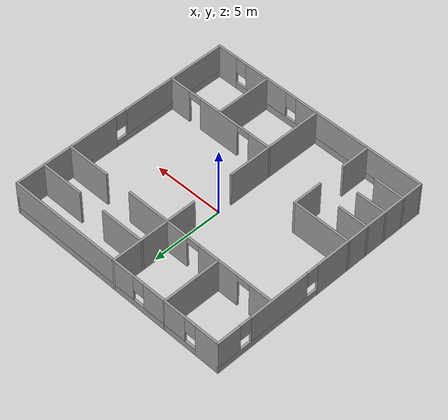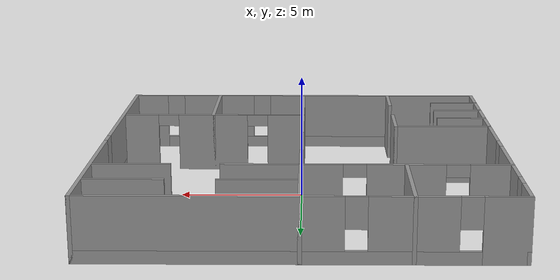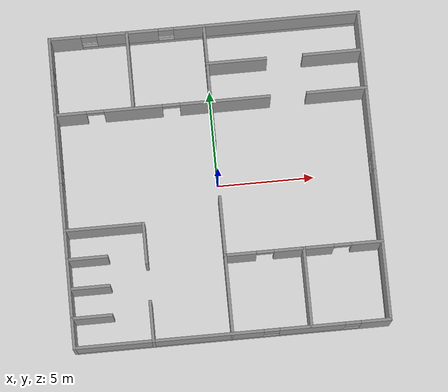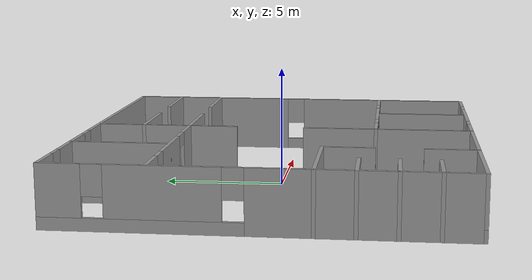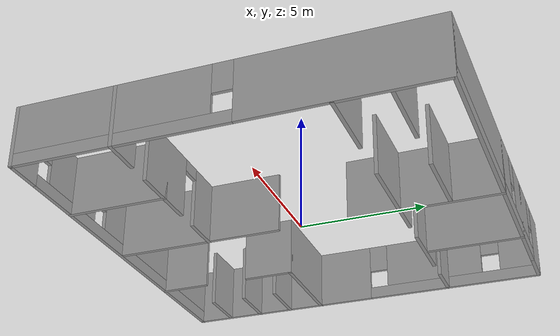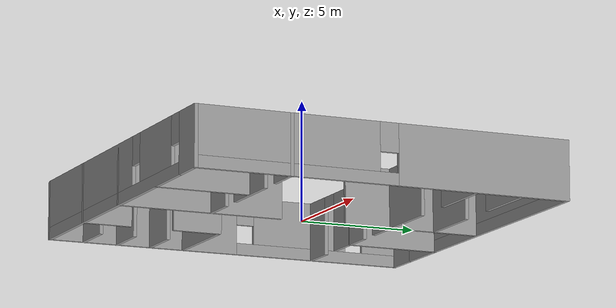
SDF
<?xml version='1.0'?>
<sdf version='1.6'>
  <model name='warehouse'>
    <pose frame=''>0 0 0 0 -0 0</pose>
    <link name='Wall_0'>
      <pose frame=''>0 8 0 0 -0 0</pose>
      <visual name='Wall_0_Visual_0'>
        <pose frame=''>-7.22039 0 1.25 0 -0 0</pose>
        <geometry>
          <box>
            <size>1.70922 0.15 2.5</size>
          </box>
        </geometry>
        <material>
          <script>
            <uri>file://media/materials/scripts/gazebo.material</uri>
            <name>Gazebo/Grey</name>
          </script>
          <ambient>0.368627 0.368627 0.368627 1</ambient>
        </material>
      </visual>
      <collision name='Wall_0_Collision_0'>
        <geometry>
          <box>
            <size>1.70922 0.15 2.5</size>
          </box>
        </geometry>
        <pose frame=''>-7.22039 0 1.25 0 -0 0</pose>
      </collision>
      <visual name='Wall_0_Visual_1'>
        <pose frame=''>0.854609 0 0.25 0 -0 0</pose>
        <geometry>
          <box>
            <size>14.4408 0.15 0.5</size>
          </box>
        </geometry>
        <material>
          <script>
            <uri>file://media/materials/scripts/gazebo.material</uri>
            <name>Gazebo/Grey</name>
          </script>
          <ambient>0.368627 0.368627 0.368627 1</ambient>
        </material>
      </visual>
      <collision name='Wall_0_Collision_1'>
        <geometry>
          <box>
            <size>14.4408 0.15 0.5</size>
          </box>
        </geometry>
        <pose frame=''>0.854609 0 0.25 0 -0 0</pose>
      </collision>
      <visual name='Wall_0_Visual_2'>
        <pose frame=''>-3.96881 0 1.5 0 -0 0</pose>
        <geometry>
          <box>
            <size>3.19395 0.15 2</size>
          </box>
        </geometry>
        <material>
          <script>
            <uri>file://media/materials/scripts/gazebo.material</uri>
            <name>Gazebo/Grey</name>
          </script>
          <ambient>0.368627 0.368627 0.368627 1</ambient>
        </material>
      </visual>
      <collision name='Wall_0_Collision_2'>
        <geometry>
          <box>
            <size>3.19395 0.15 2</size>
          </box>
        </geometry>
        <pose frame=''>-3.96881 0 1.5 0 -0 0</pose>
      </collision>
      <visual name='Wall_0_Visual_3'>
        <pose frame=''>3.25158 0 1.5 0 -0 0</pose>
        <geometry>
          <box>
            <size>9.64683 0.15 2</size>
          </box>
        </geometry>
        <material>
          <script>
            <uri>file://media/materials/scripts/gazebo.material</uri>
            <name>Gazebo/Grey</name>
          </script>
          <ambient>0.368627 0.368627 0.368627 1</ambient>
        </material>
      </visual>
      <collision name='Wall_0_Collision_3'>
        <geometry>
          <box>
            <size>9.64683 0.15 2</size>
          </box>
        </geometry>
        <pose frame=''>3.25158 0 1.5 0 -0 0</pose>
      </collision>
      <visual name='Wall_0_Visual_4'>
        <pose frame=''>-5.96578 0 1.9 0 -0 0</pose>
        <geometry>
          <box>
            <size>0.8 0.15 1.2</size>
          </box>
        </geometry>
        <material>
          <script>
            <uri>file://media/materials/scripts/gazebo.material</uri>
            <name>Gazebo/Grey</name>
          </script>
          <ambient>0.368627 0.368627 0.368627 1</ambient>
        </material>
      </visual>
      <collision name='Wall_0_Collision_4'>
        <geometry>
          <box>
            <size>0.8 0.15 1.2</size>
          </box>
        </geometry>
        <pose frame=''>-5.96578 0 1.9 0 -0 0</pose>
      </collision>
      <visual name='Wall_0_Visual_5'>
        <pose frame=''>-1.97183 0 1.9 0 -0 0</pose>
        <geometry>
          <box>
            <size>0.8 0.15 1.2</size>
          </box>
        </geometry>
        <material>
          <script>
            <uri>file://media/materials/scripts/gazebo.material</uri>
            <name>Gazebo/Grey</name>
          </script>
          <ambient>0.368627 0.368627 0.368627 1</ambient>
        </material>
      </visual>
      <collision name='Wall_0_Collision_5'>
        <geometry>
          <box>
            <size>0.8 0.15 1.2</size>
          </box>
        </geometry>
        <pose frame=''>-1.97183 0 1.9 0 -0 0</pose>
      </collision>
    </link>
    <link name='Wall_1'>
      <pose frame=''>8 0 0 0 0 -1.5708</pose>
      <visual name='Wall_1_Visual_0'>
        <pose frame=''>-4.3128 0 1.25 0 -0 0</pose>
        <geometry>
          <box>
            <size>7.5244 0.15 2.5</size>
          </box>
        </geometry>
        <material>
          <script>
            <uri>file://media/materials/scripts/gazebo.material</uri>
            <name>Gazebo/Grey</name>
          </script>
          <ambient>0.368627 0.368627 0.368627 1</ambient>
        </material>
      </visual>
      <collision name='Wall_1_Collision_0'>
        <geometry>
          <box>
            <size>7.5244 0.15 2.5</size>
          </box>
        </geometry>
        <pose frame=''>-4.3128 0 1.25 0 -0 0</pose>
      </collision>
      <visual name='Wall_1_Visual_1'>
        <pose frame=''>3.7622 0 0.25 0 -0 0</pose>
        <geometry>
          <box>
            <size>8.6256 0.15 0.5</size>
          </box>
        </geometry>
        <material>
          <script>
            <uri>file://media/materials/scripts/gazebo.material</uri>
            <name>Gazebo/Grey</name>
          </script>
          <ambient>0.368627 0.368627 0.368627 1</ambient>
        </material>
      </visual>
      <collision name='Wall_1_Collision_1'>
        <geometry>
          <box>
            <size>8.6256 0.15 0.5</size>
          </box>
        </geometry>
        <pose frame=''>3.7622 0 0.25 0 -0 0</pose>
      </collision>
      <visual name='Wall_1_Visual_2'>
        <pose frame=''>4.1622 0 1.5 0 -0 0</pose>
        <geometry>
          <box>
            <size>7.8256 0.15 2</size>
          </box>
        </geometry>
        <material>
          <script>
            <uri>file://media/materials/scripts/gazebo.material</uri>
            <name>Gazebo/Grey</name>
          </script>
          <ambient>0.368627 0.368627 0.368627 1</ambient>
        </material>
      </visual>
      <collision name='Wall_1_Collision_2'>
        <geometry>
          <box>
            <size>7.8256 0.15 2</size>
          </box>
        </geometry>
        <pose frame=''>4.1622 0 1.5 0 -0 0</pose>
      </collision>
      <visual name='Wall_1_Visual_3'>
        <pose frame=''>-0.150603 0 1.9 0 -0 0</pose>
        <geometry>
          <box>
            <size>0.8 0.15 1.2</size>
          </box>
        </geometry>
        <material>
          <script>
            <uri>file://media/materials/scripts/gazebo.material</uri>
            <name>Gazebo/Grey</name>
          </script>
          <ambient>0.368627 0.368627 0.368627 1</ambient>
        </material>
      </visual>
      <collision name='Wall_1_Collision_3'>
        <geometry>
          <box>
            <size>0.8 0.15 1.2</size>
          </box>
        </geometry>
        <pose frame=''>-0.150603 0 1.9 0 -0 0</pose>
      </collision>
    </link>
    <link name='Wall_11'>
      <pose frame=''>4 -4 0 0 -0 0</pose>
      <visual name='Wall_11_Visual_0'>
        <pose frame=''>-3.24813 0 1.25 0 -0 0</pose>
        <geometry>
          <box>
            <size>1.65375 0.15 2.5</size>
          </box>
        </geometry>
        <material>
          <script>
            <uri>file://media/materials/scripts/gazebo.material</uri>
            <name>Gazebo/Grey</name>
          </script>
          <ambient>0.368627 0.368627 0.368627 1</ambient>
        </material>
      </visual>
      <collision name='Wall_11_Collision_0'>
        <geometry>
          <box>
            <size>1.65375 0.15 2.5</size>
          </box>
        </geometry>
        <pose frame=''>-3.24813 0 1.25 0 -0 0</pose>
      </collision>
      <visual name='Wall_11_Visual_1'>
        <pose frame=''>0.008749 0 1.25 0 -0 0</pose>
        <geometry>
          <box>
            <size>3.06 0.15 2.5</size>
          </box>
        </geometry>
        <material>
          <script>
            <uri>file://media/materials/scripts/gazebo.material</uri>
            <name>Gazebo/Grey</name>
          </script>
          <ambient>0.368627 0.368627 0.368627 1</ambient>
        </material>
      </visual>
      <collision name='Wall_11_Collision_1'>
        <geometry>
          <box>
            <size>3.06 0.15 2.5</size>
          </box>
        </geometry>
        <pose frame=''>0.008749 0 1.25 0 -0 0</pose>
      </collision>
      <visual name='Wall_11_Visual_2'>
        <pose frame=''>3.25687 0 1.25 0 -0 0</pose>
        <geometry>
          <box>
            <size>1.63625 0.15 2.5</size>
          </box>
        </geometry>
        <material>
          <script>
            <uri>file://media/materials/scripts/gazebo.material</uri>
            <name>Gazebo/Grey</name>
          </script>
          <ambient>0.368627 0.368627 0.368627 1</ambient>
        </material>
      </visual>
      <collision name='Wall_11_Collision_2'>
        <geometry>
          <box>
            <size>1.63625 0.15 2.5</size>
          </box>
        </geometry>
        <pose frame=''>3.25687 0 1.25 0 -0 0</pose>
      </collision>
      <visual name='Wall_11_Visual_3'>
        <pose frame=''>-1.97125 0 2.25 0 -0 0</pose>
        <geometry>
          <box>
            <size>0.9 0.15 0.5</size>
          </box>
        </geometry>
        <material>
          <script>
            <uri>file://media/materials/scripts/gazebo.material</uri>
            <name>Gazebo/Grey</name>
          </script>
          <ambient>0.368627 0.368627 0.368627 1</ambient>
        </material>
      </visual>
      <collision name='Wall_11_Collision_3'>
        <geometry>
          <box>
            <size>0.9 0.15 0.5</size>
          </box>
        </geometry>
        <pose frame=''>-1.97125 0 2.25 0 -0 0</pose>
      </collision>
      <visual name='Wall_11_Visual_4'>
        <pose frame=''>1.98875 0 2.25 0 -0 0</pose>
        <geometry>
          <box>
            <size>0.9 0.15 0.5</size>
          </box>
        </geometry>
        <material>
          <script>
            <uri>file://media/materials/scripts/gazebo.material</uri>
            <name>Gazebo/Grey</name>
          </script>
          <ambient>0.368627 0.368627 0.368627 1</ambient>
        </material>
      </visual>
      <collision name='Wall_11_Collision_4'>
        <geometry>
          <box>
            <size>0.9 0.15 0.5</size>
          </box>
        </geometry>
        <pose frame=''>1.98875 0 2.25 0 -0 0</pose>
      </collision>
    </link>
    <link name='Wall_13'>
      <collision name='Wall_13_Collision'>
        <geometry>
          <box>
            <size>4.15 0.15 2.5</size>
          </box>
        </geometry>
        <pose frame=''>0 0 1.25 0 -0 0</pose>
      </collision>
      <visual name='Wall_13_Visual'>
        <pose frame=''>0 0 1.25 0 -0 0</pose>
        <geometry>
          <box>
            <size>4.15 0.15 2.5</size>
          </box>
        </geometry>
        <material>
          <script>
            <uri>file://media/materials/scripts/gazebo.material</uri>
            <name>Gazebo/Grey</name>
          </script>
          <ambient>0.368627 0.368627 0.368627 1</ambient>
        </material>
      </visual>
      <pose frame=''>-4 6 0 0 -0 1.5708</pose>
    </link>
    <link name='Wall_15'>
      <collision name='Wall_15_Collision'>
        <geometry>
          <box>
            <size>4.15 0.15 2.5</size>
          </box>
        </geometry>
        <pose frame=''>0 0 1.25 0 -0 0</pose>
      </collision>
      <visual name='Wall_15_Visual'>
        <pose frame=''>0 0 1.25 0 -0 0</pose>
        <geometry>
          <box>
            <size>4.15 0.15 2.5</size>
          </box>
        </geometry>
        <material>
          <script>
            <uri>file://media/materials/scripts/gazebo.material</uri>
            <name>Gazebo/Grey</name>
          </script>
          <ambient>0.368627 0.368627 0.368627 1</ambient>
        </material>
      </visual>
      <pose frame=''>4 -6 0 0 0 -1.5708</pose>
    </link>
    <link name='Wall_2'>
      <pose frame=''>0 -8 0 0 -0 3.14159</pose>
      <visual name='Wall_2_Visual_0'>
        <pose frame=''>-7.29256 0 1.25 0 -0 0</pose>
        <geometry>
          <box>
            <size>1.56488 0.15 2.5</size>
          </box>
        </geometry>
        <material>
          <script>
            <uri>file://media/materials/scripts/gazebo.material</uri>
            <name>Gazebo/Grey</name>
          </script>
          <ambient>0.368627 0.368627 0.368627 1</ambient>
        </material>
      </visual>
      <collision name='Wall_2_Collision_0'>
        <geometry>
          <box>
            <size>1.56488 0.15 2.5</size>
          </box>
        </geometry>
        <pose frame=''>-7.29256 0 1.25 0 -0 0</pose>
      </collision>
      <visual name='Wall_2_Visual_1'>
        <pose frame=''>0.78244 0 0.25 0 -0 0</pose>
        <geometry>
          <box>
            <size>14.5851 0.15 0.5</size>
          </box>
        </geometry>
        <material>
          <script>
            <uri>file://media/materials/scripts/gazebo.material</uri>
            <name>Gazebo/Grey</name>
          </script>
          <ambient>0.368627 0.368627 0.368627 1</ambient>
        </material>
      </visual>
      <collision name='Wall_2_Collision_1'>
        <geometry>
          <box>
            <size>14.5851 0.15 0.5</size>
          </box>
        </geometry>
        <pose frame=''>0.78244 0 0.25 0 -0 0</pose>
      </collision>
      <visual name='Wall_2_Visual_2'>
        <pose frame=''>-4.05064 0 1.5 0 -0 0</pose>
        <geometry>
          <box>
            <size>3.31896 0.15 2</size>
          </box>
        </geometry>
        <material>
          <script>
            <uri>file://media/materials/scripts/gazebo.material</uri>
            <name>Gazebo/Grey</name>
          </script>
          <ambient>0.368627 0.368627 0.368627 1</ambient>
        </material>
      </visual>
      <collision name='Wall_2_Collision_2'>
        <geometry>
          <box>
            <size>3.31896 0.15 2</size>
          </box>
        </geometry>
        <pose frame=''>-4.05064 0 1.5 0 -0 0</pose>
      </collision>
      <visual name='Wall_2_Visual_3'>
        <pose frame=''>3.24192 0 1.5 0 -0 0</pose>
        <geometry>
          <box>
            <size>9.66616 0.15 2</size>
          </box>
        </geometry>
        <material>
          <script>
            <uri>file://media/materials/scripts/gazebo.material</uri>
            <name>Gazebo/Grey</name>
          </script>
          <ambient>0.368627 0.368627 0.368627 1</ambient>
        </material>
      </visual>
      <collision name='Wall_2_Collision_3'>
        <geometry>
          <box>
            <size>9.66616 0.15 2</size>
          </box>
        </geometry>
        <pose frame=''>3.24192 0 1.5 0 -0 0</pose>
      </collision>
      <visual name='Wall_2_Visual_4'>
        <pose frame=''>-6.11012 0 1.9 0 -0 0</pose>
        <geometry>
          <box>
            <size>0.8 0.15 1.2</size>
          </box>
        </geometry>
        <material>
          <script>
            <uri>file://media/materials/scripts/gazebo.material</uri>
            <name>Gazebo/Grey</name>
          </script>
          <ambient>0.368627 0.368627 0.368627 1</ambient>
        </material>
      </visual>
      <collision name='Wall_2_Collision_4'>
        <geometry>
          <box>
            <size>0.8 0.15 1.2</size>
          </box>
        </geometry>
        <pose frame=''>-6.11012 0 1.9 0 -0 0</pose>
      </collision>
      <visual name='Wall_2_Visual_5'>
        <pose frame=''>-1.99116 0 1.9 0 -0 0</pose>
        <geometry>
          <box>
            <size>0.8 0.15 1.2</size>
          </box>
        </geometry>
        <material>
          <script>
            <uri>file://media/materials/scripts/gazebo.material</uri>
            <name>Gazebo/Grey</name>
          </script>
          <ambient>0.368627 0.368627 0.368627 1</ambient>
        </material>
      </visual>
      <collision name='Wall_2_Collision_5'>
        <geometry>
          <box>
            <size>0.8 0.15 1.2</size>
          </box>
        </geometry>
        <pose frame=''>-1.99116 0 1.9 0 -0 0</pose>
      </collision>
    </link>
    <link name='Wall_24'>
      <collision name='Wall_24_Collision'>
        <geometry>
          <box>
            <size>4.15 0.15 2.5</size>
          </box>
        </geometry>
        <pose frame=''>0 0 1.25 0 -0 0</pose>
      </collision>
      <visual name='Wall_24_Visual'>
        <pose frame=''>0 0 1.25 0 -0 0</pose>
        <geometry>
          <box>
            <size>4.15 0.15 2.5</size>
          </box>
        </geometry>
        <material>
          <script>
            <uri>file://media/materials/scripts/gazebo.material</uri>
            <name>Gazebo/Grey</name>
          </script>
          <ambient>0.368627 0.368627 0.368627 1</ambient>
        </material>
      </visual>
      <pose frame=''>-6 -2 0 0 -0 0</pose>
    </link>
    <link name='Wall_25'>
      <collision name='Wall_25_Collision'>
        <geometry>
          <box>
            <size>2.15 0.15 2.5</size>
          </box>
        </geometry>
        <pose frame=''>0 0 1.25 0 -0 0</pose>
      </collision>
      <visual name='Wall_25_Visual'>
        <pose frame=''>0 0 1.25 0 -0 0</pose>
        <geometry>
          <box>
            <size>2.15 0.15 2.5</size>
          </box>
        </geometry>
        <material>
          <script>
            <uri>file://media/materials/scripts/gazebo.material</uri>
            <name>Gazebo/Grey</name>
          </script>
          <ambient>0.368627 0.368627 0.368627 1</ambient>
        </material>
      </visual>
      <pose frame=''>-4 -3 0 0 0 -1.5708</pose>
    </link>
    <link name='Wall_27'>
      <collision name='Wall_27_Collision'>
        <geometry>
          <box>
            <size>2.15 0.15 2.5</size>
          </box>
        </geometry>
        <pose frame=''>0 0 1.25 0 -0 0</pose>
      </collision>
      <visual name='Wall_27_Visual'>
        <pose frame=''>0 0 1.25 0 -0 0</pose>
        <geometry>
          <box>
            <size>2.15 0.15 2.5</size>
          </box>
        </geometry>
        <material>
          <script>
            <uri>file://media/materials/scripts/gazebo.material</uri>
            <name>Gazebo/Grey</name>
          </script>
          <ambient>0.368627 0.368627 0.368627 1</ambient>
        </material>
      </visual>
      <pose frame=''>-7 -6.5 0 0 -0 0</pose>
    </link>
    <link name='Wall_29'>
      <collision name='Wall_29_Collision'>
        <geometry>
          <box>
            <size>2.15 0.15 2.5</size>
          </box>
        </geometry>
        <pose frame=''>0 0 1.25 0 -0 0</pose>
      </collision>
      <visual name='Wall_29_Visual'>
        <pose frame=''>0 0 1.25 0 -0 0</pose>
        <geometry>
          <box>
            <size>2.15 0.15 2.5</size>
          </box>
        </geometry>
        <material>
          <script>
            <uri>file://media/materials/scripts/gazebo.material</uri>
            <name>Gazebo/Grey</name>
          </script>
          <ambient>0.368627 0.368627 0.368627 1</ambient>
        </material>
      </visual>
      <pose frame=''>-7 -5 0 0 -0 0</pose>
    </link>
    <link name='Wall_3'>
      <pose frame=''>-8 0 0 0 -0 1.5708</pose>
      <visual name='Wall_3_Visual_0'>
        <pose frame=''>-3.80915 0 1.25 0 -0 0</pose>
        <geometry>
          <box>
            <size>8.53171 0.15 2.5</size>
          </box>
        </geometry>
        <material>
          <script>
            <uri>file://media/materials/scripts/gazebo.material</uri>
            <name>Gazebo/Grey</name>
          </script>
          <ambient>0.368627 0.368627 0.368627 1</ambient>
        </material>
      </visual>
      <collision name='Wall_3_Collision_0'>
        <geometry>
          <box>
            <size>8.53171 0.15 2.5</size>
          </box>
        </geometry>
        <pose frame=''>-3.80915 0 1.25 0 -0 0</pose>
      </collision>
      <visual name='Wall_3_Visual_1'>
        <pose frame=''>4.26586 0 0.25 0 -0 0</pose>
        <geometry>
          <box>
            <size>7.61829 0.15 0.5</size>
          </box>
        </geometry>
        <material>
          <script>
            <uri>file://media/materials/scripts/gazebo.material</uri>
            <name>Gazebo/Grey</name>
          </script>
          <ambient>0.368627 0.368627 0.368627 1</ambient>
        </material>
      </visual>
      <collision name='Wall_3_Collision_1'>
        <geometry>
          <box>
            <size>7.61829 0.15 0.5</size>
          </box>
        </geometry>
        <pose frame=''>4.26586 0 0.25 0 -0 0</pose>
      </collision>
      <visual name='Wall_3_Visual_2'>
        <pose frame=''>3.41639 0 1.5 0 -0 0</pose>
        <geometry>
          <box>
            <size>4.31936 0.15 2</size>
          </box>
        </geometry>
        <material>
          <script>
            <uri>file://media/materials/scripts/gazebo.material</uri>
            <name>Gazebo/Grey</name>
          </script>
          <ambient>0.368627 0.368627 0.368627 1</ambient>
        </material>
      </visual>
      <collision name='Wall_3_Collision_2'>
        <geometry>
          <box>
            <size>4.31936 0.15 2</size>
          </box>
        </geometry>
        <pose frame=''>3.41639 0 1.5 0 -0 0</pose>
      </collision>
      <visual name='Wall_3_Visual_3'>
        <pose frame=''>7.22553 0 1.5 0 -0 0</pose>
        <geometry>
          <box>
            <size>1.69893 0.15 2</size>
          </box>
        </geometry>
        <material>
          <script>
            <uri>file://media/materials/scripts/gazebo.material</uri>
            <name>Gazebo/Grey</name>
          </script>
          <ambient>0.368627 0.368627 0.368627 1</ambient>
        </material>
      </visual>
      <collision name='Wall_3_Collision_3'>
        <geometry>
          <box>
            <size>1.69893 0.15 2</size>
          </box>
        </geometry>
        <pose frame=''>7.22553 0 1.5 0 -0 0</pose>
      </collision>
      <visual name='Wall_3_Visual_4'>
        <pose frame=''>0.856711 0 1.9 0 -0 0</pose>
        <geometry>
          <box>
            <size>0.8 0.15 1.2</size>
          </box>
        </geometry>
        <material>
          <script>
            <uri>file://media/materials/scripts/gazebo.material</uri>
            <name>Gazebo/Grey</name>
          </script>
          <ambient>0.368627 0.368627 0.368627 1</ambient>
        </material>
      </visual>
      <collision name='Wall_3_Collision_4'>
        <geometry>
          <box>
            <size>0.8 0.15 1.2</size>
          </box>
        </geometry>
        <pose frame=''>0.856711 0 1.9 0 -0 0</pose>
      </collision>
      <visual name='Wall_3_Visual_5'>
        <pose frame=''>5.97607 0 1.9 0 -0 0</pose>
        <geometry>
          <box>
            <size>0.8 0.15 1.2</size>
          </box>
        </geometry>
        <material>
          <script>
            <uri>file://media/materials/scripts/gazebo.material</uri>
            <name>Gazebo/Grey</name>
          </script>
          <ambient>0.368627 0.368627 0.368627 1</ambient>
        </material>
      </visual>
      <collision name='Wall_3_Collision_5'>
        <geometry>
          <box>
            <size>0.8 0.15 1.2</size>
          </box>
        </geometry>
        <pose frame=''>5.97607 0 1.9 0 -0 0</pose>
      </collision>
    </link>
    <link name='Wall_31'>
      <collision name='Wall_31_Collision'>
        <geometry>
          <box>
            <size>2.15 0.15 2.5</size>
          </box>
        </geometry>
        <pose frame=''>0 0 1.25 0 -0 0</pose>
      </collision>
      <visual name='Wall_31_Visual'>
        <pose frame=''>0 0 1.25 0 -0 0</pose>
        <geometry>
          <box>
            <size>2.15 0.15 2.5</size>
          </box>
        </geometry>
        <material>
          <script>
            <uri>file://media/materials/scripts/gazebo.material</uri>
            <name>Gazebo/Grey</name>
          </script>
          <ambient>0.368627 0.368627 0.368627 1</ambient>
        </material>
      </visual>
      <pose frame=''>-7 -3.5 0 0 -0 0</pose>
    </link>
    <link name='Wall_33'>
      <collision name='Wall_33_Collision'>
        <geometry>
          <box>
            <size>2.15 0.15 2.5</size>
          </box>
        </geometry>
        <pose frame=''>0 0 1.25 0 -0 0</pose>
      </collision>
      <visual name='Wall_33_Visual'>
        <pose frame=''>0 0 1.25 0 -0 0</pose>
        <geometry>
          <box>
            <size>2.15 0.15 2.5</size>
          </box>
        </geometry>
        <material>
          <script>
            <uri>file://media/materials/scripts/gazebo.material</uri>
            <name>Gazebo/Grey</name>
          </script>
          <ambient>0.368627 0.368627 0.368627 1</ambient>
        </material>
      </visual>
      <pose frame=''>-4 -7 0 0 0 -1.5708</pose>
    </link>
    <link name='Wall_36'>
      <collision name='Wall_36_Collision'>
        <geometry>
          <box>
            <size>3.15 0.15 2.5</size>
          </box>
        </geometry>
        <pose frame=''>0 0 1.25 0 -0 0</pose>
      </collision>
      <visual name='Wall_36_Visual'>
        <pose frame=''>0 0 1.25 0 -0 0</pose>
        <geometry>
          <box>
            <size>3.15 0.15 2.5</size>
          </box>
        </geometry>
        <material>
          <script>
            <uri>file://media/materials/scripts/gazebo.material</uri>
            <name>Gazebo/Grey</name>
          </script>
          <ambient>0.368627 0.368627 0.368627 1</ambient>
        </material>
      </visual>
      <pose frame=''>1.5 4 0 0 -0 0</pose>
    </link>
    <link name='Wall_38'>
      <collision name='Wall_38_Collision'>
        <geometry>
          <box>
            <size>3.15 0.15 2.5</size>
          </box>
        </geometry>
        <pose frame=''>0 0 1.25 0 -0 0</pose>
      </collision>
      <visual name='Wall_38_Visual'>
        <pose frame=''>0 0 1.25 0 -0 0</pose>
        <geometry>
          <box>
            <size>3.15 0.15 2.5</size>
          </box>
        </geometry>
        <material>
          <script>
            <uri>file://media/materials/scripts/gazebo.material</uri>
            <name>Gazebo/Grey</name>
          </script>
          <ambient>0.368627 0.368627 0.368627 1</ambient>
        </material>
      </visual>
      <pose frame=''>6.5 4 0 0 -0 0</pose>
    </link>
    <link name='Wall_40'>
      <collision name='Wall_40_Collision'>
        <geometry>
          <box>
            <size>3.15 0.15 2.5</size>
          </box>
        </geometry>
        <pose frame=''>0 0 1.25 0 -0 0</pose>
      </collision>
      <visual name='Wall_40_Visual'>
        <pose frame=''>0 0 1.25 0 -0 0</pose>
        <geometry>
          <box>
            <size>3.15 0.15 2.5</size>
          </box>
        </geometry>
        <material>
          <script>
            <uri>file://media/materials/scripts/gazebo.material</uri>
            <name>Gazebo/Grey</name>
          </script>
          <ambient>0.368627 0.368627 0.368627 1</ambient>
        </material>
      </visual>
      <pose frame=''>1.5 6 0 0 -0 0</pose>
    </link>
    <link name='Wall_42'>
      <collision name='Wall_42_Collision'>
        <geometry>
          <box>
            <size>3.15 0.15 2.5</size>
          </box>
        </geometry>
        <pose frame=''>0 0 1.25 0 -0 0</pose>
      </collision>
      <visual name='Wall_42_Visual'>
        <pose frame=''>0 0 1.25 0 -0 0</pose>
        <geometry>
          <box>
            <size>3.15 0.15 2.5</size>
          </box>
        </geometry>
        <material>
          <script>
            <uri>file://media/materials/scripts/gazebo.material</uri>
            <name>Gazebo/Grey</name>
          </script>
          <ambient>0.368627 0.368627 0.368627 1</ambient>
        </material>
      </visual>
      <pose frame=''>6.5 6 0 0 -0 0</pose>
    </link>
    <link name='Wall_5'>
      <collision name='Wall_5_Collision'>
        <geometry>
          <box>
            <size>6.15 0.15 2.5</size>
          </box>
        </geometry>
        <pose frame=''>0 0 1.25 0 -0 0</pose>
      </collision>
      <visual name='Wall_5_Visual'>
        <pose frame=''>0 0 1.25 0 -0 0</pose>
        <geometry>
          <box>
            <size>6.15 0.15 2.5</size>
          </box>
        </geometry>
        <material>
          <script>
            <uri>file://media/materials/scripts/gazebo.material</uri>
            <name>Gazebo/Grey</name>
          </script>
          <ambient>0.368627 0.368627 0.368627 1</ambient>
        </material>
      </visual>
      <pose frame=''>0 5 0 0 0 -1.5708</pose>
    </link>
    <link name='Wall_7'>
      <collision name='Wall_7_Collision'>
        <geometry>
          <box>
            <size>7.15 0.15 2.5</size>
          </box>
        </geometry>
        <pose frame=''>0 0 1.25 0 -0 0</pose>
      </collision>
      <visual name='Wall_7_Visual'>
        <pose frame=''>0 0 1.25 0 -0 0</pose>
        <geometry>
          <box>
            <size>7.15 0.15 2.5</size>
          </box>
        </geometry>
        <material>
          <script>
            <uri>file://media/materials/scripts/gazebo.material</uri>
            <name>Gazebo/Grey</name>
          </script>
          <ambient>0.368627 0.368627 0.368627 1</ambient>
        </material>
      </visual>
      <pose frame=''>0 -4.5 0 0 -0 1.5708</pose>
    </link>
    <link name='Wall_9'>
      <pose frame=''>-4 4 0 0 -0 0</pose>
      <visual name='Wall_9_Visual_0'>
        <pose frame=''>-3.23871 0 1.25 0 -0 0</pose>
        <geometry>
          <box>
            <size>1.67258 0.15 2.5</size>
          </box>
        </geometry>
        <material>
          <script>
            <uri>file://media/materials/scripts/gazebo.material</uri>
            <name>Gazebo/Grey</name>
          </script>
          <ambient>0.368627 0.368627 0.368627 1</ambient>
        </material>
      </visual>
      <collision name='Wall_9_Collision_0'>
        <geometry>
          <box>
            <size>1.67258 0.15 2.5</size>
          </box>
        </geometry>
        <pose frame=''>-3.23871 0 1.25 0 -0 0</pose>
      </collision>
      <visual name='Wall_9_Visual_1'>
        <pose frame=''>0.002578 0 1.25 0 -0 0</pose>
        <geometry>
          <box>
            <size>3.01 0.15 2.5</size>
          </box>
        </geometry>
        <material>
          <script>
            <uri>file://media/materials/scripts/gazebo.material</uri>
            <name>Gazebo/Grey</name>
          </script>
          <ambient>0.368627 0.368627 0.368627 1</ambient>
        </material>
      </visual>
      <collision name='Wall_9_Collision_1'>
        <geometry>
          <box>
            <size>3.01 0.15 2.5</size>
          </box>
        </geometry>
        <pose frame=''>0.002578 0 1.25 0 -0 0</pose>
      </collision>
      <visual name='Wall_9_Visual_2'>
        <pose frame=''>3.24129 0 1.25 0 -0 0</pose>
        <geometry>
          <box>
            <size>1.66742 0.15 2.5</size>
          </box>
        </geometry>
        <material>
          <script>
            <uri>file://media/materials/scripts/gazebo.material</uri>
            <name>Gazebo/Grey</name>
          </script>
          <ambient>0.368627 0.368627 0.368627 1</ambient>
        </material>
      </visual>
      <collision name='Wall_9_Collision_2'>
        <geometry>
          <box>
            <size>1.66742 0.15 2.5</size>
          </box>
        </geometry>
        <pose frame=''>3.24129 0 1.25 0 -0 0</pose>
      </collision>
      <visual name='Wall_9_Visual_3'>
        <pose frame=''>-1.95242 0 2.25 0 -0 0</pose>
        <geometry>
          <box>
            <size>0.9 0.15 0.5</size>
          </box>
        </geometry>
        <material>
          <script>
            <uri>file://media/materials/scripts/gazebo.material</uri>
            <name>Gazebo/Grey</name>
          </script>
          <ambient>0.368627 0.368627 0.368627 1</ambient>
        </material>
      </visual>
      <collision name='Wall_9_Collision_3'>
        <geometry>
          <box>
            <size>0.9 0.15 0.5</size>
          </box>
        </geometry>
        <pose frame=''>-1.95242 0 2.25 0 -0 0</pose>
      </collision>
      <visual name='Wall_9_Visual_4'>
        <pose frame=''>1.95758 0 2.25 0 -0 0</pose>
        <geometry>
          <box>
            <size>0.9 0.15 0.5</size>
          </box>
        </geometry>
        <material>
          <script>
            <uri>file://media/materials/scripts/gazebo.material</uri>
            <name>Gazebo/Grey</name>
          </script>
          <ambient>0.368627 0.368627 0.368627 1</ambient>
        </material>
      </visual>
      <collision name='Wall_9_Collision_4'>
        <geometry>
          <box>
            <size>0.9 0.15 0.5</size>
          </box>
        </geometry>
        <pose frame=''>1.95758 0 2.25 0 -0 0</pose>
      </collision>
    </link>
    <static>1</static>
  </model>
</sdf>
